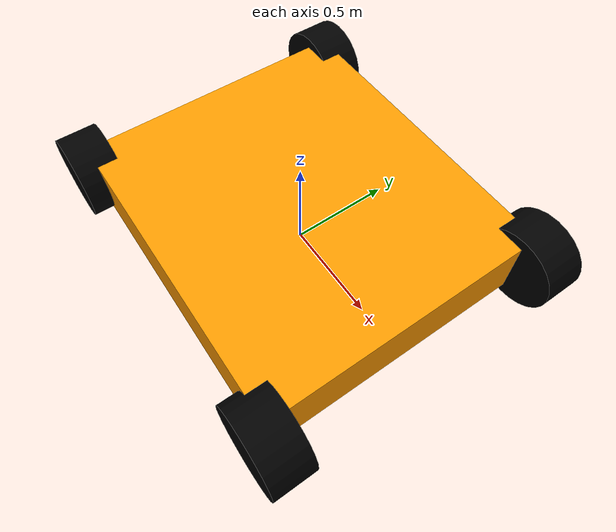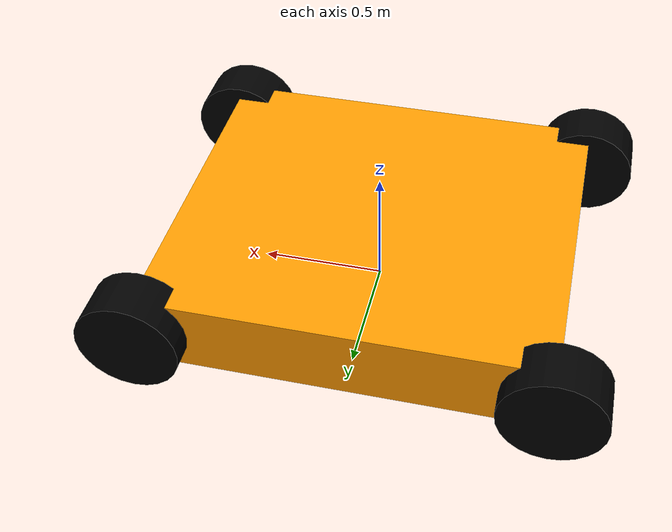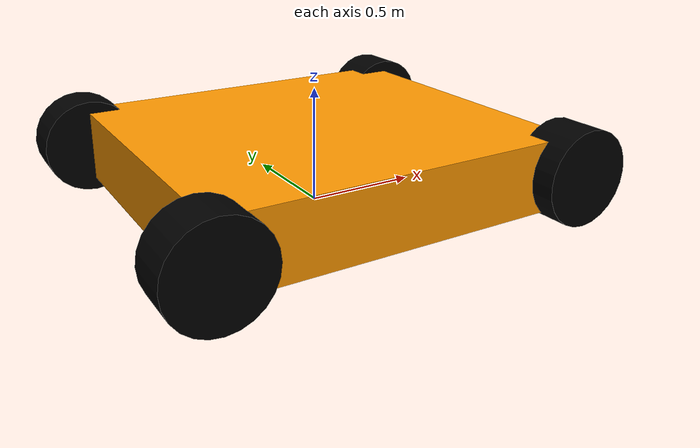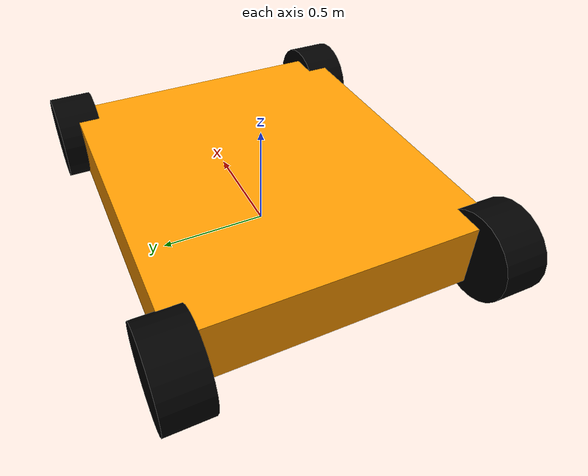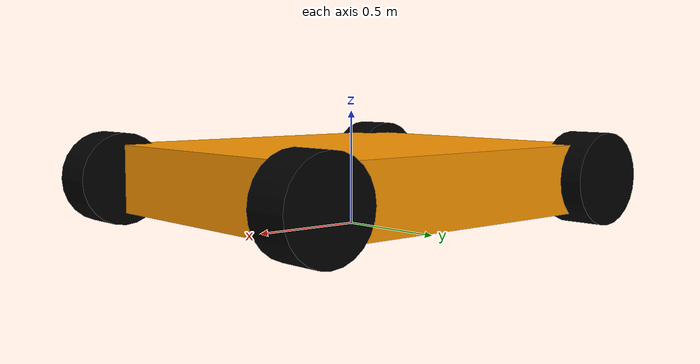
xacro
<?xml version="1.0"?>
<!-- Minimal test URDF based on working gz_ros2_control_demos example -->
<!-- Uses demo structure with our vehicle dimensions -->
<robot name="qutms_minimal" xmlns:xacro="http://ros.org/wiki/xacro">

  <!-- Our vehicle dimensions -->
  <xacro:property name="wheelbase" value="1.580"/>
  <xacro:property name="track_width" value="1.400"/>
  <xacro:property name="wheel_radius" value="0.2032"/>
  <xacro:property name="wheel_width" value="0.2"/>

  <!-- Friction coefficient - test different values (2, 10, 50, 100) -->
  <xacro:property name="wheel_friction_mu" value="2"/>

  <!-- Demo-style masses (start simple) -->
  <!-- Phase 1 Test: Real vehicle masses -->
  <xacro:property name="chassis_mass" value="235"/>  <!-- Our real mass: 235kg -->
  <xacro:property name="wheel_mass" value="3.0"/>    <!-- Our real mass: 3kg per wheel -->
  <xacro:property name="steering_mass" value="1.0"/>  <!-- Our real mass: 1kg steering hinge -->

  <material name="Black">
    <color rgba="0 0 0 1" />
  </material>
  <material name="Orange">
    <color rgba="1 0.6 0 1" />
  </material>

  <!-- Base footprint (TF reference frame) -->
  <link name="base_footprint" />

  <joint name="base_footprint_joint" type="fixed">
    <origin xyz="0 0 ${wheel_radius}" rpy="0 0 0" />
    <parent link="base_footprint" />
    <child link="chassis" />
  </joint>

  <!-- Chassis -->
  <link name="chassis">
    <collision>
      <origin xyz="0 0 0" rpy="0 0 0" />
      <geometry>
        <box size="${wheelbase} ${track_width} 0.3" />
      </geometry>
    </collision>

    <visual>
      <origin xyz="0 0 0" rpy="0 0 0" />
      <geometry>
        <box size="${wheelbase} ${track_width} 0.3" />
      </geometry>
      <material name="Orange" />
    </visual>

    <inertial>
      <origin xyz="0 0 0" rpy="0 0 0" />
      <mass value="${chassis_mass}" />
      <inertia ixx="10.4" ixy="0.0" ixz="0.0" iyy="35.4" iyz="0.0" izz="41.66" />
    </inertial>
  </link>

  <!-- REAR WHEELS (TRACTION) -->

  <!-- Rear Left Wheel -->
  <link name="rear_left_wheel">
    <collision>
      <geometry>
        <cylinder length="${wheel_width}" radius="${wheel_radius}" />
      </geometry>
      <surface>
        <friction>
          <ode>
            <mu>${wheel_friction_mu}</mu>
            <mu2>${wheel_friction_mu}</mu2>
          </ode>
        </friction>
      </surface>
    </collision>
    <visual>
      <geometry>
        <cylinder length="${wheel_width}" radius="${wheel_radius}" />
      </geometry>
      <material name="Black" />
    </visual>
    <inertial>
      <mass value="${wheel_mass}" />
      <inertia ixx="0.26" ixy="0.0" ixz="0.0" iyy="0.26" iyz="0.0" izz="0.51" />
    </inertial>
  </link>

  <joint name="rear_left_wheel_joint" type="continuous">
    <origin xyz="${-wheelbase/2} ${track_width/2} 0" rpy="-1.57 0 0" />
    <parent link="chassis" />
    <child link="rear_left_wheel" />
    <axis xyz="0 0 1" />
    <dynamics damping="0.2" />
  </joint>

  <!-- Rear Right Wheel -->
  <link name="rear_right_wheel">
    <collision>
      <geometry>
        <cylinder length="${wheel_width}" radius="${wheel_radius}" />
      </geometry>
      <surface>
        <friction>
          <ode>
            <mu>${wheel_friction_mu}</mu>
            <mu2>${wheel_friction_mu}</mu2>
          </ode>
        </friction>
      </surface>
    </collision>
    <visual>
      <geometry>
        <cylinder length="${wheel_width}" radius="${wheel_radius}" />
      </geometry>
      <material name="Black" />
    </visual>
    <inertial>
      <mass value="${wheel_mass}" />
      <inertia ixx="0.26" ixy="0.0" ixz="0.0" iyy="0.26" iyz="0.0" izz="0.51" />
    </inertial>
  </link>

  <joint name="rear_right_wheel_joint" type="continuous">
    <origin xyz="${-wheelbase/2} ${-track_width/2} 0" rpy="-1.57 0 0" />
    <parent link="chassis" />
    <child link="rear_right_wheel" />
    <axis xyz="0 0 1" />
    <dynamics damping="0.2" />
  </joint>

  <!-- FRONT WHEELS (STEERING) -->

  <!-- Left Steering Hinge -->
  <link name="left_steering_hinge">
    <inertial>
      <mass value="${steering_mass}"/>
      <inertia ixx="0.001" ixy="0.0" ixz="0.0" iyy="0.001" iyz="0.0" izz="0.002" />
    </inertial>
  </link>

  <joint name="left_steering_hinge_joint" type="revolute">
    <origin xyz="${wheelbase/2} ${track_width/2} 0" rpy="0 0 0" />
    <parent link="chassis" />
    <child link="left_steering_hinge" />
    <axis xyz="0 0 1" />
    <dynamics damping="0.2" />
    <limit effort="1000.0" lower="-1.57" upper="1.57" velocity="30"/>
  </joint>

  <!-- Right Steering Hinge -->
  <link name="right_steering_hinge">
    <inertial>
      <mass value="${steering_mass}"/>
      <inertia ixx="0.001" ixy="0.0" ixz="0.0" iyy="0.001" iyz="0.0" izz="0.002" />
    </inertial>
  </link>

  <joint name="right_steering_hinge_joint" type="revolute">
    <origin xyz="${wheelbase/2} ${-track_width/2} 0" rpy="0 0 0" />
    <parent link="chassis" />
    <child link="right_steering_hinge" />
    <axis xyz="0 0 1" />
    <dynamics damping="0.2" />
    <limit effort="1000.0" lower="-1.57" upper="1.57" velocity="30"/>
  </joint>

  <!-- Front Left Wheel -->
  <link name="front_left_wheel">
    <collision>
      <geometry>
        <cylinder length="${wheel_width}" radius="${wheel_radius}" />
      </geometry>
      <surface>
        <friction>
          <ode>
            <mu>${wheel_friction_mu}</mu>
            <mu2>${wheel_friction_mu}</mu2>
          </ode>
        </friction>
      </surface>
    </collision>
    <visual>
      <geometry>
        <cylinder length="${wheel_width}" radius="${wheel_radius}" />
      </geometry>
      <material name="Black" />
    </visual>
    <inertial>
      <mass value="${wheel_mass}" />
      <inertia ixx="0.26" ixy="0.0" ixz="0.0" iyy="0.26" iyz="0.0" izz="0.51" />
    </inertial>
  </link>

  <joint name="front_left_wheel_joint" type="continuous">
    <origin xyz="0 0 0" rpy="-1.57 0 0" />
    <parent link="left_steering_hinge" />
    <child link="front_left_wheel" />
    <axis xyz="0 0 1" />
    <dynamics damping="0.2" />
  </joint>

  <!-- Front Right Wheel -->
  <link name="front_right_wheel">
    <collision>
      <geometry>
        <cylinder length="${wheel_width}" radius="${wheel_radius}" />
      </geometry>
      <surface>
        <friction>
          <ode>
            <mu>${wheel_friction_mu}</mu>
            <mu2>${wheel_friction_mu}</mu2>
          </ode>
        </friction>
      </surface>
    </collision>
    <visual>
      <geometry>
        <cylinder length="${wheel_width}" radius="${wheel_radius}" />
      </geometry>
      <material name="Black" />
    </visual>
    <inertial>
      <mass value="${wheel_mass}" />
      <inertia ixx="0.26" ixy="0.0" ixz="0.0" iyy="0.26" iyz="0.0" izz="0.51" />
    </inertial>
  </link>

  <joint name="front_right_wheel_joint" type="continuous">
    <origin xyz="0 0 0" rpy="-1.57 0 0" />
    <parent link="right_steering_hinge" />
    <child link="front_right_wheel" />
    <axis xyz="0 0 1" />
    <dynamics damping="0.2" />
  </joint>

  <!-- ROS2 CONTROL - EXACT DEMO STRUCTURE -->

  <ros2_control name="GazeboSystem" type="system">
    <hardware>
      <plugin>gz_ros2_control/GazeboSimSystem</plugin>
    </hardware>

    <!-- Rear wheels - velocity command only (like demo) -->
    <joint name="rear_left_wheel_joint">
      <command_interface name="velocity" />
      <state_interface name="velocity" />
      <state_interface name="position" />
    </joint>

    <joint name="rear_right_wheel_joint">
      <command_interface name="velocity" />
      <state_interface name="velocity" />
      <state_interface name="position" />
    </joint>

    <!-- Steering joints - position command (like demo) -->
    <joint name="left_steering_hinge_joint">
      <command_interface name="position" />
      <state_interface name="position" />
      <state_interface name="velocity" />
    </joint>

    <joint name="right_steering_hinge_joint">
      <command_interface name="position" />
      <state_interface name="position" />
      <state_interface name="velocity" />
    </joint>

    <!-- Front wheels - state feedback only (like demo) -->
    <joint name="front_left_wheel_joint">
      <state_interface name="position" />
      <state_interface name="velocity" />
    </joint>

    <joint name="front_right_wheel_joint">
      <state_interface name="position" />
      <state_interface name="velocity" />
    </joint>
  </ros2_control>

  <!-- Gazebo plugin -->
  <gazebo>
    <plugin filename="gz_ros2_control-system" name="gz_ros2_control::GazeboSimROS2ControlPlugin">
      <robot_param>robot_description</robot_param>
      <robot_param_node>robot_state_publisher</robot_param_node>
      <parameters>$(find qutms_sim)/config/minimal_controllers.yaml</parameters>
    </plugin>
  </gazebo>

</robot>
